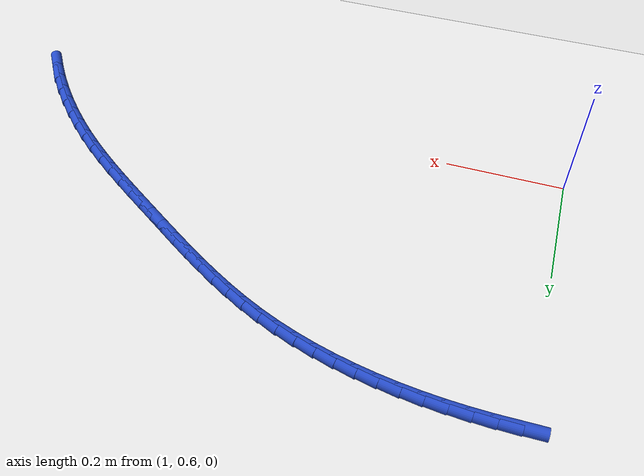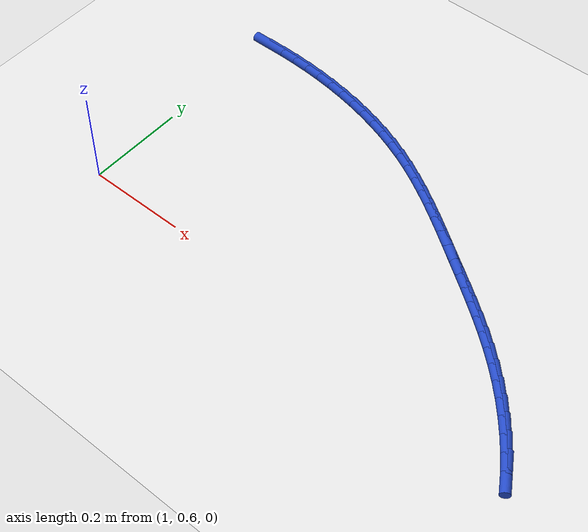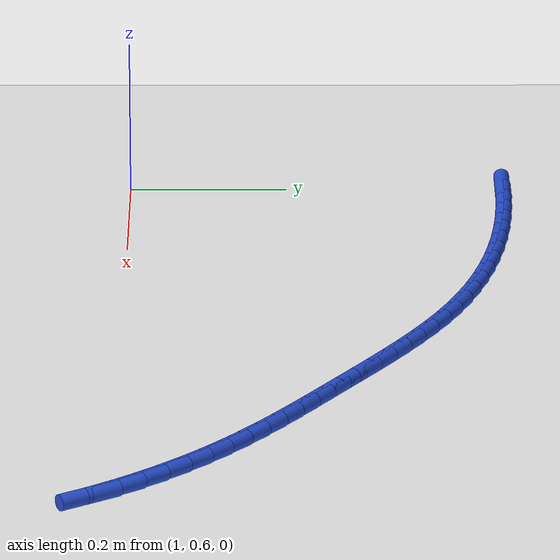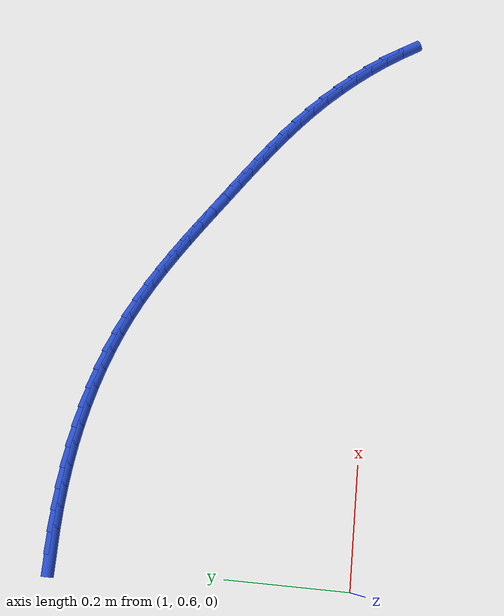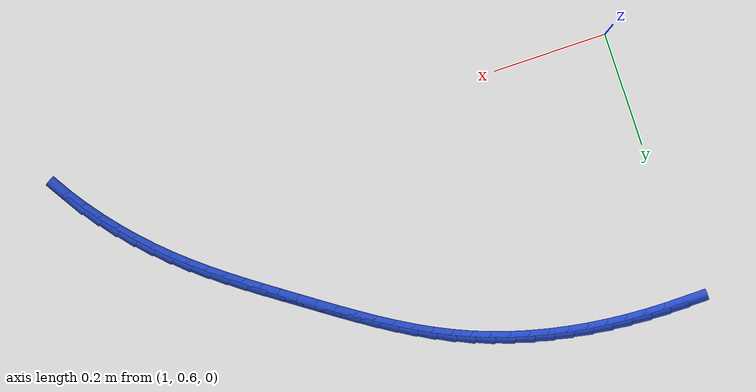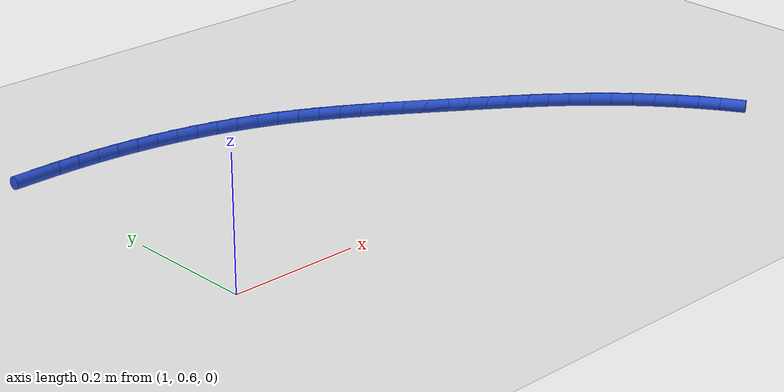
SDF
<sdf version="1.6">
 <world name="default">
  <model name="ground_plane">
   <static>1</static>
   <link name="link">
    <collision name="collision">
     <geometry><plane><normal>0 0 1</normal><size>100 100</size></plane></geometry>
     <surface><friction><ode><mu>100</mu><mu2>50</mu2></ode></friction></surface>
    </collision>
    <visual name="visual">
     <cast_shadows>0</cast_shadows>
     <geometry><plane><normal>0 0 1</normal><size>100 100</size></plane></geometry>
     <material>
      <script><uri>file://media/materials/scripts/gazebo.material</uri><name>Gazebo/WhiteGlow</name></script>
     </material>
    </visual>
   </link>
  </model>
  <model name="line">
   <link name="link_49">
    <pose>1.0172668777752925 1.077615726421321 0.01 0 1.57 0.009245487454102821</pose>
    <collision name="collision">
     <geometry><cylinder><radius>0.01</radius><length>0.08</length></cylinder></geometry>
    </collision>
    <visual name="visual">
     <material>
      <script><name>Gazebo/Blue</name><uri>file://media/materials/scripts/gazebo.material</uri></script>
     </material>
     <geometry><cylinder><radius>0.01</radius><length>0.08</length></cylinder></geometry>
    </visual>
   </link>
   <link name="link_50">
    <pose>1.0513661584555287 1.077930999876186 0.01 0 1.57 -0.02122348295904273</pose>
    <collision name="collision">
     <geometry><cylinder><radius>0.01</radius><length>0.08</length></cylinder></geometry>
    </collision>
    <visual name="visual">
     <material>
      <script><name>Gazebo/Blue</name><uri>file://media/materials/scripts/gazebo.material</uri></script>
     </material>
     <geometry><cylinder><radius>0.01</radius><length>0.08</length></cylinder></geometry>
    </visual>
   </link>
   <link name="link_51">
    <pose>1.085402636489084 1.0772085187841778 0.01 0 1.57 -0.05271455473331886</pose>
    <collision name="collision">
     <geometry><cylinder><radius>0.01</radius><length>0.08</length></cylinder></geometry>
    </collision>
    <visual name="visual">
     <material>
      <script><name>Gazebo/Blue</name><uri>file://media/materials/scripts/gazebo.material</uri></script>
     </material>
     <geometry><cylinder><radius>0.01</radius><length>0.08</length></cylinder></geometry>
    </visual>
   </link>
   <link name="link_52">
    <pose>1.1193237528744733 1.075418724089008 0.01 0 1.57 -0.0854226394720076</pose>
    <collision name="collision">
     <geometry><cylinder><radius>0.01</radius><length>0.08</length></cylinder></geometry>
    </collision>
    <visual name="visual">
     <material>
      <script><name>Gazebo/Blue</name><uri>file://media/materials/scripts/gazebo.material</uri></script>
     </material>
     <geometry><cylinder><radius>0.01</radius><length>0.08</length></cylinder></geometry>
    </visual>
   </link>
   <link name="link_53">
    <pose>1.1530786978774576 1.0725282535549043 0.01 0 1.57 -0.11942754282316366</pose>
    <collision name="collision">
     <geometry><cylinder><radius>0.01</radius><length>0.08</length></cylinder></geometry>
    </collision>
    <visual name="visual">
     <material>
      <script><name>Gazebo/Blue</name><uri>file://media/materials/scripts/gazebo.material</uri></script>
     </material>
     <geometry><cylinder><radius>0.01</radius><length>0.08</length></cylinder></geometry>
    </visual>
   </link>
   <link name="link_54">
    <pose>1.1866166617637999 1.0685037449460948 0.01 0 1.57 -0.15480439020922973</pose>
    <collision name="collision">
     <geometry><cylinder><radius>0.01</radius><length>0.08</length></cylinder></geometry>
    </collision>
    <visual name="visual">
     <material>
      <script><name>Gazebo/Blue</name><uri>file://media/materials/scripts/gazebo.material</uri></script>
     </material>
     <geometry><cylinder><radius>0.01</radius><length>0.08</length></cylinder></geometry>
    </visual>
   </link>
   <link name="link_55">
    <pose>1.2198868347992622 1.063311836026808 0.01 0 1.57 -0.19162167110095227</pose>
    <collision name="collision">
     <geometry><cylinder><radius>0.01</radius><length>0.08</length></cylinder></geometry>
    </collision>
    <visual name="visual">
     <material>
      <script><name>Gazebo/Blue</name><uri>file://media/materials/scripts/gazebo.material</uri></script>
     </material>
     <geometry><cylinder><radius>0.01</radius><length>0.08</length></cylinder></geometry>
    </visual>
   </link>
   <link name="link_56">
    <pose>1.2528384072496075 1.0569191645612717 0.01 0 1.57 -0.22993887479623012</pose>
    <collision name="collision">
     <geometry><cylinder><radius>0.01</radius><length>0.08</length></cylinder></geometry>
    </collision>
    <visual name="visual">
     <material>
      <script><name>Gazebo/Blue</name><uri>file://media/materials/scripts/gazebo.material</uri></script>
     </material>
     <geometry><cylinder><radius>0.01</radius><length>0.08</length></cylinder></geometry>
    </visual>
   </link>
   <link name="link_57">
    <pose>1.2854205693805976 1.0492923683137143 0.01 0 1.57 -0.2698037209241004</pose>
    <collision name="collision">
     <geometry><cylinder><radius>0.01</radius><length>0.08</length></cylinder></geometry>
    </collision>
    <visual name="visual">
     <material>
      <script><name>Gazebo/Blue</name><uri>file://media/materials/scripts/gazebo.material</uri></script>
     </material>
     <geometry><cylinder><radius>0.01</radius><length>0.08</length></cylinder></geometry>
    </visual>
   </link>
   <link name="link_58">
    <pose>1.3175825114579949 1.0403980850483643 0.01 0 1.57 -0.31124902055332937</pose>
    <collision name="collision">
     <geometry><cylinder><radius>0.01</radius><length>0.08</length></cylinder></geometry>
    </collision>
    <visual name="visual">
     <material>
      <script><name>Gazebo/Blue</name><uri>file://media/materials/scripts/gazebo.material</uri></script>
     </material>
     <geometry><cylinder><radius>0.01</radius><length>0.08</length></cylinder></geometry>
    </visual>
   </link>
   <link name="link_59">
    <pose>1.3492734237475623 1.0302029525294496 0.01 0 1.57 -0.35428924825967656</pose>
    <collision name="collision">
     <geometry><cylinder><radius>0.01</radius><length>0.08</length></cylinder></geometry>
    </collision>
    <visual name="visual">
     <material>
      <script><name>Gazebo/Blue</name><uri>file://media/materials/scripts/gazebo.material</uri></script>
     </material>
     <geometry><cylinder><radius>0.01</radius><length>0.08</length></cylinder></geometry>
    </visual>
   </link>
   <link name="link_60">
    <pose>1.3804424965150621 1.0186736085211985 0.01 0 1.57 -0.39891696124763515</pose>
    <collision name="collision">
     <geometry><cylinder><radius>0.01</radius><length>0.08</length></cylinder></geometry>
    </collision>
    <visual name="visual">
     <material>
      <script><name>Gazebo/Blue</name><uri>file://media/materials/scripts/gazebo.material</uri></script>
     </material>
     <geometry><cylinder><radius>0.01</radius><length>0.08</length></cylinder></geometry>
    </visual>
   </link>
   <link name="link_61">
    <pose>1.4110389200262567 1.0057766907878396 0.01 0 1.57 -0.44425029999144644</pose>
    <collision name="collision">
     <geometry><cylinder><radius>0.01</radius><length>0.08</length></cylinder></geometry>
    </collision>
    <visual name="visual">
     <material>
      <script><name>Gazebo/Blue</name><uri>file://media/materials/scripts/gazebo.material</uri></script>
     </material>
     <geometry><cylinder><radius>0.01</radius><length>0.08</length></cylinder></geometry>
    </visual>
   </link>
   <link name="link_62">
    <pose>1.4410254931771402 0.9915035833022187 0.01 0 1.57 -0.48528868936568276</pose>
    <collision name="collision">
     <geometry><cylinder><radius>0.01</radius><length>0.08</length></cylinder></geometry>
    </collision>
    <visual name="visual">
     <material>
      <script><name>Gazebo/Blue</name><uri>file://media/materials/scripts/gazebo.material</uri></script>
     </material>
     <geometry><cylinder><radius>0.01</radius><length>0.08</length></cylinder></geometry>
    </visual>
   </link>
   <link name="link_63">
    <pose>1.4704441658554785 0.9759895998024445 0.01 0 1.57 -0.520219605334575</pose>
    <collision name="collision">
     <geometry><cylinder><radius>0.01</radius><length>0.08</length></cylinder></geometry>
    </collision>
    <visual name="visual">
     <material>
      <script><name>Gazebo/Blue</name><uri>file://media/materials/scripts/gazebo.material</uri></script>
     </material>
     <geometry><cylinder><radius>0.01</radius><length>0.08</length></cylinder></geometry>
    </visual>
   </link>
   <link name="link_64">
    <pose>1.4993654291470226 0.9594219539186444 0.01 0 1.57 -0.5490804780549143</pose>
    <collision name="collision">
     <geometry><cylinder><radius>0.01</radius><length>0.08</length></cylinder></geometry>
    </collision>
    <visual name="visual">
     <material>
      <script><name>Gazebo/Blue</name><uri>file://media/materials/scripts/gazebo.material</uri></script>
     </material>
     <geometry><cylinder><radius>0.01</radius><length>0.08</length></cylinder></geometry>
    </visual>
   </link>
   <link name="link_65">
    <pose>1.5278598124123044 0.9419879288805798 0.01 0 1.57 -0.5719504607172513</pose>
    <collision name="collision">
     <geometry><cylinder><radius>0.01</radius><length>0.08</length></cylinder></geometry>
    </collision>
    <visual name="visual">
     <material>
      <script><name>Gazebo/Blue</name><uri>file://media/materials/scripts/gazebo.material</uri></script>
     </material>
     <geometry><cylinder><radius>0.01</radius><length>0.08</length></cylinder></geometry>
    </visual>
   </link>
   <link name="link_66">
    <pose>1.5559978450118537 0.9238748079180121 0.01 0 1.57 -0.5889165850855029</pose>
    <collision name="collision">
     <geometry><cylinder><radius>0.01</radius><length>0.08</length></cylinder></geometry>
    </collision>
    <visual name="visual">
     <material>
      <script><name>Gazebo/Blue</name><uri>file://media/materials/scripts/gazebo.material</uri></script>
     </material>
     <geometry><cylinder><radius>0.01</radius><length>0.08</length></cylinder></geometry>
    </visual>
   </link>
   <link name="link_67">
    <pose>1.5838500563062021 0.9052698742607028 0.01 0 1.57 -0.6000500159475107</pose>
    <collision name="collision">
     <geometry><cylinder><radius>0.01</radius><length>0.08</length></cylinder></geometry>
    </collision>
    <visual name="visual">
     <material>
      <script><name>Gazebo/Blue</name><uri>file://media/materials/scripts/gazebo.material</uri></script>
     </material>
     <geometry><cylinder><radius>0.01</radius><length>0.08</length></cylinder></geometry>
    </visual>
   </link>
   <link name="link_68">
    <pose>1.61148697565588 0.8863604111384132 0.01 0 1.57 -0.6053891901506766</pose>
    <collision name="collision">
     <geometry><cylinder><radius>0.01</radius><length>0.08</length></cylinder></geometry>
    </collision>
    <visual name="visual">
     <material>
      <script><name>Gazebo/Blue</name><uri>file://media/materials/scripts/gazebo.material</uri></script>
     </material>
     <geometry><cylinder><radius>0.01</radius><length>0.08</length></cylinder></geometry>
    </visual>
   </link>
   <link name="link_69">
    <pose>1.6389791324214178 0.8673337017809047 0.01 0 1.57 -0.6056868802864507</pose>
    <collision name="collision">
     <geometry><cylinder><radius>0.01</radius><length>0.08</length></cylinder></geometry>
    </collision>
    <visual name="visual">
     <material>
      <script><name>Gazebo/Blue</name><uri>file://media/materials/scripts/gazebo.material</uri></script>
     </material>
     <geometry><cylinder><radius>0.01</radius><length>0.08</length></cylinder></geometry>
    </visual>
   </link>
   <link name="link_70">
    <pose>1.666387361379235 0.848353007337903 0.01 0 1.57 -0.6081983665845118</pose>
    <collision name="collision">
     <geometry><cylinder><radius>0.01</radius><length>0.08</length></cylinder></geometry>
    </collision>
    <visual name="visual">
     <material>
      <script><name>Gazebo/Blue</name><uri>file://media/materials/scripts/gazebo.material</uri></script>
     </material>
     <geometry><cylinder><radius>0.01</radius><length>0.08</length></cylinder></geometry>
    </visual>
   </link>
   <link name="link_71">
    <pose>1.6936794881194939 0.829351122743111 0.01 0 1.57 -0.6169963698731339</pose>
    <collision name="collision">
     <geometry><cylinder><radius>0.01</radius><length>0.08</length></cylinder></geometry>
    </collision>
    <visual name="visual">
     <material>
      <script><name>Gazebo/Blue</name><uri>file://media/materials/scripts/gazebo.material</uri></script>
     </material>
     <geometry><cylinder><radius>0.01</radius><length>0.08</length></cylinder></geometry>
    </visual>
   </link>
   <link name="link_72">
    <pose>1.7207715261775949 0.8101324585341704 0.01 0 1.57 -0.6321095713628452</pose>
    <collision name="collision">
     <geometry><cylinder><radius>0.01</radius><length>0.08</length></cylinder></geometry>
    </collision>
    <visual name="visual">
     <material>
      <script><name>Gazebo/Blue</name><uri>file://media/materials/scripts/gazebo.material</uri></script>
     </material>
     <geometry><cylinder><radius>0.01</radius><length>0.08</length></cylinder></geometry>
    </visual>
   </link>
   <link name="link_73">
    <pose>1.7475789288761476 0.7905000371049561 0.01 0 1.57 -0.6534595711522786</pose>
    <collision name="collision">
     <geometry><cylinder><radius>0.01</radius><length>0.08</length></cylinder></geometry>
    </collision>
    <visual name="visual">
     <material>
      <script><name>Gazebo/Blue</name><uri>file://media/materials/scripts/gazebo.material</uri></script>
     </material>
     <geometry><cylinder><radius>0.01</radius><length>0.08</length></cylinder></geometry>
    </visual>
   </link>
   <link name="link_74">
    <pose>1.7740171495377604 0.7702568808493422 0.01 0 1.57 -0.6808885350943154</pose>
    <collision name="collision">
     <geometry><cylinder><radius>0.01</radius><length>0.08</length></cylinder></geometry>
    </collision>
    <visual name="visual">
     <material>
      <script><name>Gazebo/Blue</name><uri>file://media/materials/scripts/gazebo.material</uri></script>
     </material>
     <geometry><cylinder><radius>0.01</radius><length>0.08</length></cylinder></geometry>
    </visual>
   </link>
   <link name="link_75">
    <pose>1.8000016414850424 0.7492060121612029 0.01 0 1.57 -0.7141394193240267</pose>
    <collision name="collision">
     <geometry><cylinder><radius>0.01</radius><length>0.08</length></cylinder></geometry>
    </collision>
    <visual name="visual">
     <material>
      <script><name>Gazebo/Blue</name><uri>file://media/materials/scripts/gazebo.material</uri></script>
     </material>
     <geometry><cylinder><radius>0.01</radius><length>0.08</length></cylinder></geometry>
    </visual>
   </link>
   <link name="link_76">
    <pose>1.825447858040602 0.7271504534344123 0.01 0 1.57 -0.7525283345865966</pose>
    <collision name="collision">
     <geometry><cylinder><radius>0.01</radius><length>0.08</length></cylinder></geometry>
    </collision>
    <visual name="visual">
     <material>
      <script><name>Gazebo/Blue</name><uri>file://media/materials/scripts/gazebo.material</uri></script>
     </material>
     <geometry><cylinder><radius>0.01</radius><length>0.08</length></cylinder></geometry>
    </visual>
   </link>
   <link name="link_77">
    <pose>1.8502676862733591 0.7039108980764806 0.01 0 1.57 -0.7929318902597442</pose>
    <collision name="collision">
     <geometry><cylinder><radius>0.01</radius><length>0.08</length></cylinder></geometry>
    </collision>
    <visual name="visual">
     <material>
      <script><name>Gazebo/Blue</name><uri>file://media/materials/scripts/gazebo.material</uri></script>
     </material>
     <geometry><cylinder><radius>0.01</radius><length>0.08</length></cylinder></geometry>
    </visual>
   </link>
   <link name="link_78">
    <pose>1.8743396209623524 0.6794735004130467 0.01 0 1.57 -0.8340721807287838</pose>
    <collision name="collision">
     <geometry><cylinder><radius>0.01</radius><length>0.08</length></cylinder></geometry>
    </collision>
    <visual name="visual">
     <material>
      <script><name>Gazebo/Blue</name><uri>file://media/materials/scripts/gazebo.material</uri></script>
     </material>
     <geometry><cylinder><radius>0.01</radius><length>0.08</length></cylinder></geometry>
    </visual>
   </link>
   <link name="link_79">
    <pose>1.8975239124466154 0.6539148171292511 0.01 0 1.57 -0.876325039428879</pose>
    <collision name="collision">
     <geometry><cylinder><radius>0.01</radius><length>0.08</length></cylinder></geometry>
    </collision>
    <visual name="visual">
     <material>
      <script><name>Gazebo/Blue</name><uri>file://media/materials/scripts/gazebo.material</uri></script>
     </material>
     <geometry><cylinder><radius>0.01</radius><length>0.08</length></cylinder></geometry>
    </visual>
   </link>
   <link name="link_80">
    <pose>1.9196806259288803 0.6273123222723715 0.01 0 1.57 -0.9200782778044176</pose>
    <collision name="collision">
     <geometry><cylinder><radius>0.01</radius><length>0.08</length></cylinder></geometry>
    </collision>
    <visual name="visual">
     <material>
      <script><name>Gazebo/Blue</name><uri>file://media/materials/scripts/gazebo.material</uri></script>
     </material>
     <geometry><cylinder><radius>0.01</radius><length>0.08</length></cylinder></geometry>
    </visual>
   </link>
   <link name="link_81">
    <pose>1.9406698266118791 0.5997434898896862 0.01 0 1.57 -0.9657204609486352</pose>
    <collision name="collision">
     <geometry><cylinder><radius>0.01</radius><length>0.08</length></cylinder></geometry>
    </collision>
    <visual name="visual">
     <material>
      <script><name>Gazebo/Blue</name><uri>file://media/materials/scripts/gazebo.material</uri></script>
     </material>
     <geometry><cylinder><radius>0.01</radius><length>0.08</length></cylinder></geometry>
    </visual>
   </link>
   <link name="link_82">
    <pose>1.9603515796983433 0.5712857940284726 0.01 0 1.57 -1.0136431384454847</pose>
    <collision name="collision">
     <geometry><cylinder><radius>0.01</radius><length>0.08</length></cylinder></geometry>
    </collision>
    <visual name="visual">
     <material>
      <script><name>Gazebo/Blue</name><uri>file://media/materials/scripts/gazebo.material</uri></script>
     </material>
     <geometry><cylinder><radius>0.01</radius><length>0.08</length></cylinder></geometry>
    </visual>
   </link>
  </model>
 </world>
</sdf>
